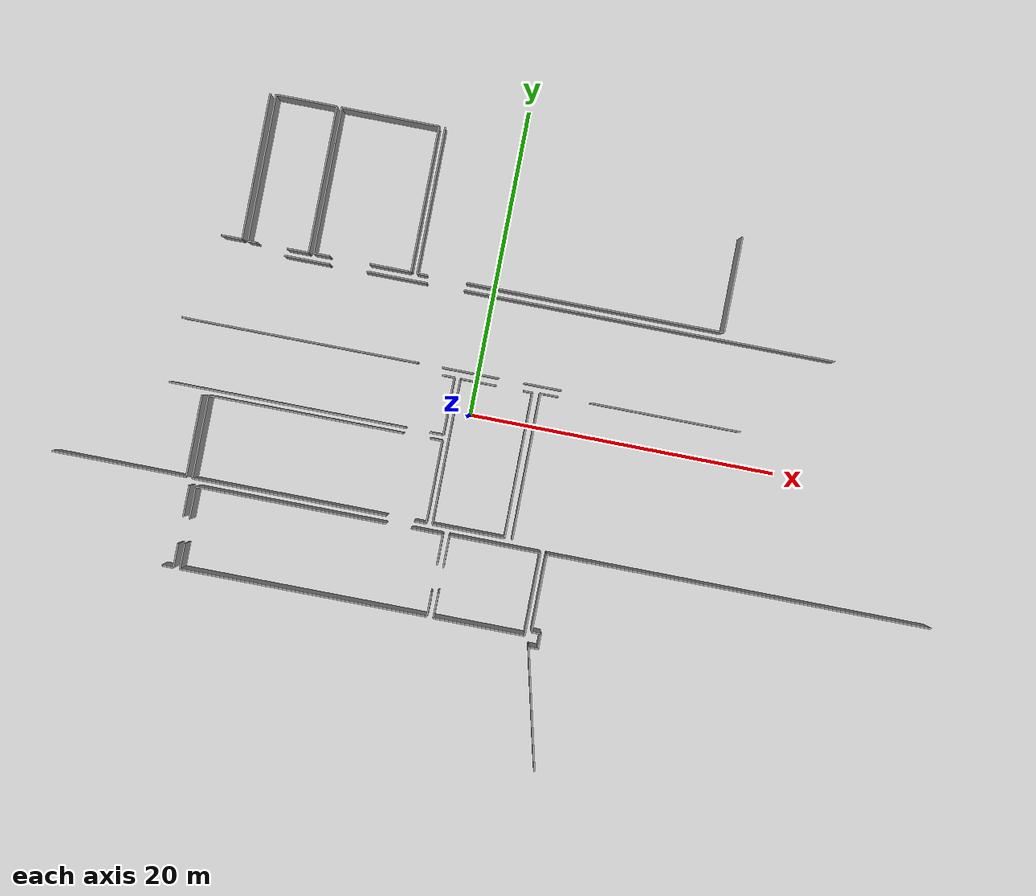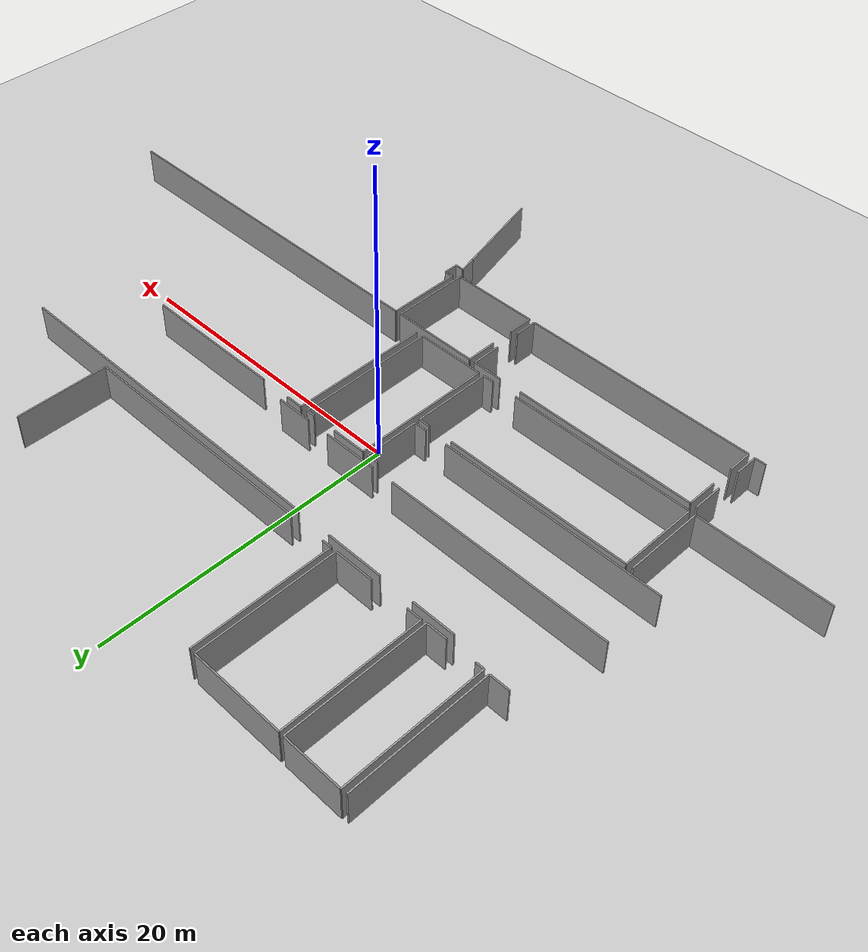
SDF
<sdf version="1.6">
 <world name="default">
  <model name="ground_plane">
   <static>1</static>
   <link name="link">
    <collision name="collision">
     <geometry><plane><normal>0 0 1</normal><size>100 100</size></plane></geometry>
     <surface><friction><ode><mu>100</mu><mu2>50</mu2></ode></friction></surface>
    </collision>
    <visual name="visual">
     <cast_shadows>0</cast_shadows>
     <geometry><plane><normal>0 0 1</normal><size>100 100</size></plane></geometry>
     <material>
      <script><uri>file://media/materials/scripts/gazebo.material</uri><name>Gazebo/Grey</name></script>
     </material>
    </visual>
   </link>
  </model>
  <model name="50052748">
   <static>1</static>
   <link name="Wall_15">
    <collision name="Wall_15_Collision">
     <geometry><box><size>2.93442130214 0.1 2.5</size></box></geometry>
     <pose>1.46721065107 0 1.25 0 0 0</pose>
    </collision>
    <visual name="Wall_15_Visual">
     <pose>1.46721065107 0 1.25 0 0 0</pose>
     <geometry><box><size>2.93442130214 0.1 2.5</size></box></geometry>
     <material>
      <script><uri>file://media/materials/scripts/gazebo.material</uri><name>Gazebo/Grey</name></script>
      <ambient>1 1 1 1</ambient>
     </material>
    </visual>
    <pose>28.9768079513 -13.728546372 0 0 0 0.0</pose>
   </link>
   <link name="Wall_16">
    <collision name="Wall_16_Collision">
     <geometry><box><size>3.93695394945 0.1 2.5</size></box></geometry>
     <pose>1.96847697472 0 1.25 0 0 0</pose>
    </collision>
    <visual name="Wall_16_Visual">
     <pose>1.96847697472 0 1.25 0 0 0</pose>
     <geometry><box><size>3.93695394945 0.1 2.5</size></box></geometry>
     <material>
      <script><uri>file://media/materials/scripts/gazebo.material</uri><name>Gazebo/Grey</name></script>
      <ambient>1 1 1 1</ambient>
     </material>
    </visual>
    <pose>34.3019620724 -13.728546372 0 0 0 0.0</pose>
   </link>
   <link name="Wall_17">
    <collision name="Wall_17_Collision">
     <geometry><box><size>24.0978157344 0.1 2.5</size></box></geometry>
     <pose>12.0489078672 0 1.25 0 0 0</pose>
    </collision>
    <visual name="Wall_17_Visual">
     <pose>12.0489078672 0 1.25 0 0 0</pose>
     <geometry><box><size>24.0978157344 0.1 2.5</size></box></geometry>
     <material>
      <script><uri>file://media/materials/scripts/gazebo.material</uri><name>Gazebo/Grey</name></script>
      <ambient>1 1 1 1</ambient>
     </material>
    </visual>
    <pose>40.6578034579 -13.728546372 0 0 0 0.0</pose>
   </link>
   <link name="Wall_27">
    <collision name="Wall_27_Collision">
     <geometry><box><size>2.42193117845 0.1 2.5</size></box></geometry>
     <pose>1.21096558922 0 1.25 0 0 0</pose>
    </collision>
    <visual name="Wall_27_Visual">
     <pose>1.21096558922 0 1.25 0 0 0</pose>
     <geometry><box><size>2.42193117845 0.1 2.5</size></box></geometry>
     <material>
      <script><uri>file://media/materials/scripts/gazebo.material</uri><name>Gazebo/Grey</name></script>
      <ambient>1 1 1 1</ambient>
     </material>
    </visual>
    <pose>47.9662093866 -18.8256734597 0 0 0 3.14159265359</pose>
   </link>
   <link name="Wall_28">
    <collision name="Wall_28_Collision">
     <geometry><box><size>3.72313104706 0.1 2.5</size></box></geometry>
     <pose>1.86156552353 0 1.25 0 0 0</pose>
    </collision>
    <visual name="Wall_28_Visual">
     <pose>1.86156552353 0 1.25 0 0 0</pose>
     <geometry><box><size>3.72313104706 0.1 2.5</size></box></geometry>
     <material>
      <script><uri>file://media/materials/scripts/gazebo.material</uri><name>Gazebo/Grey</name></script>
      <ambient>1 1 1 1</ambient>
     </material>
    </visual>
    <pose>43.9417478437 -18.8256734597 0 0 0 3.14159265359</pose>
   </link>
   <link name="Wall_29">
    <collision name="Wall_29_Collision">
     <geometry><box><size>15.3426175931 0.1 2.5</size></box></geometry>
     <pose>7.67130879654 0 1.25 0 0 0</pose>
    </collision>
    <visual name="Wall_29_Visual">
     <pose>7.67130879654 0 1.25 0 0 0</pose>
     <geometry><box><size>15.3426175931 0.1 2.5</size></box></geometry>
     <material>
      <script><uri>file://media/materials/scripts/gazebo.material</uri><name>Gazebo/Grey</name></script>
      <ambient>1 1 1 1</ambient>
     </material>
    </visual>
    <pose>38.6622498583 -18.8256734597 0 0 0 3.14159265359</pose>
   </link>
   <link name="Wall_62">
    <collision name="Wall_62_Collision">
     <geometry><box><size>5.33390488051 0.1 2.5</size></box></geometry>
     <pose>2.66695244026 0 1.25 0 0 0</pose>
    </collision>
    <visual name="Wall_62_Visual">
     <pose>2.66695244026 0 1.25 0 0 0</pose>
     <geometry><box><size>5.33390488051 0.1 2.5</size></box></geometry>
     <material>
      <script><uri>file://media/materials/scripts/gazebo.material</uri><name>Gazebo/Grey</name></script>
      <ambient>1 1 1 1</ambient>
     </material>
    </visual>
    <pose>25.5054197638 -23.4316166204 0 0 0 -1.57079632679</pose>
   </link>
   <link name="Wall_63">
    <collision name="Wall_63_Collision">
     <geometry><box><size>8.73947213898 0.1 2.5</size></box></geometry>
     <pose>4.36973606949 0 1.25 0 0 0</pose>
    </collision>
    <visual name="Wall_63_Visual">
     <pose>4.36973606949 0 1.25 0 0 0</pose>
     <geometry><box><size>8.73947213898 0.1 2.5</size></box></geometry>
     <material>
      <script><uri>file://media/materials/scripts/gazebo.material</uri><name>Gazebo/Grey</name></script>
      <ambient>1 1 1 1</ambient>
     </material>
    </visual>
    <pose>25.5054197638 -28.7655215009 0 0 0 3.14159265359</pose>
   </link>
   <link name="Wall_79">
    <collision name="Wall_79_Collision">
     <geometry><box><size>9.43598185422 0.1 2.5</size></box></geometry>
     <pose>4.71799092711 0 1.25 0 0 0</pose>
    </collision>
    <visual name="Wall_79_Visual">
     <pose>4.71799092711 0 1.25 0 0 0</pose>
     <geometry><box><size>9.43598185422 0.1 2.5</size></box></geometry>
     <material>
      <script><uri>file://media/materials/scripts/gazebo.material</uri><name>Gazebo/Grey</name></script>
      <ambient>1 1 1 1</ambient>
     </material>
    </visual>
    <pose>26.1390254698 -3.77766476475 0 0 0 -1.57079632679</pose>
   </link>
   <link name="Wall_80">
    <collision name="Wall_80_Collision">
     <geometry><box><size>1.34749011735 0.1 2.5</size></box></geometry>
     <pose>0.673745058674 0 1.25 0 0 0</pose>
    </collision>
    <visual name="Wall_80_Visual">
     <pose>0.673745058674 0 1.25 0 0 0</pose>
     <geometry><box><size>1.34749011735 0.1 2.5</size></box></geometry>
     <material>
      <script><uri>file://media/materials/scripts/gazebo.material</uri><name>Gazebo/Grey</name></script>
      <ambient>1 1 1 1</ambient>
     </material>
    </visual>
    <pose>26.1390254698 -13.213646619 0 0 0 3.14159265359</pose>
   </link>
   <link name="Wall_92">
    <collision name="Wall_92_Collision">
     <geometry><box><size>0.588330038059 0.1 2.5</size></box></geometry>
     <pose>0.29416501903 0 1.25 0 0 0</pose>
    </collision>
    <visual name="Wall_92_Visual">
     <pose>0.29416501903 0 1.25 0 0 0</pose>
     <geometry><box><size>0.588330038059 0.1 2.5</size></box></geometry>
     <material>
      <script><uri>file://media/materials/scripts/gazebo.material</uri><name>Gazebo/Grey</name></script>
      <ambient>1 1 1 1</ambient>
     </material>
    </visual>
    <pose>26.5188591546 -13.2623464971 0 0 0 0.0</pose>
   </link>
   <link name="Wall_93">
    <collision name="Wall_93_Collision">
     <geometry><box><size>1.40012149605 0.1 2.5</size></box></geometry>
     <pose>0.700060748025 0 1.25 0 0 0</pose>
    </collision>
    <visual name="Wall_93_Visual">
     <pose>0.700060748025 0 1.25 0 0 0</pose>
     <geometry><box><size>1.40012149605 0.1 2.5</size></box></geometry>
     <material>
      <script><uri>file://media/materials/scripts/gazebo.material</uri><name>Gazebo/Grey</name></script>
      <ambient>1 1 1 1</ambient>
     </material>
    </visual>
    <pose>29.0705298521 -13.2623464971 0 0 0 0.0</pose>
   </link>
   <link name="Wall_94">
    <collision name="Wall_94_Collision">
     <geometry><box><size>9.50484652563 0.1 2.5</size></box></geometry>
     <pose>4.75242326282 0 1.25 0 0 0</pose>
    </collision>
    <visual name="Wall_94_Visual">
     <pose>4.75242326282 0 1.25 0 0 0</pose>
     <geometry><box><size>9.50484652563 0.1 2.5</size></box></geometry>
     <material>
      <script><uri>file://media/materials/scripts/gazebo.material</uri><name>Gazebo/Grey</name></script>
      <ambient>1 1 1 1</ambient>
     </material>
    </visual>
    <pose>30.4706513482 -13.2623464971 0 0 0 1.57079632679</pose>
   </link>
   <link name="Wall_95">
    <collision name="Wall_95_Collision">
     <geometry><box><size>3.94608517659 0.1 2.5</size></box></geometry>
     <pose>1.9730425883 0 1.25 0 0 0</pose>
    </collision>
    <visual name="Wall_95_Visual">
     <pose>1.9730425883 0 1.25 0 0 0</pose>
     <geometry><box><size>3.94608517659 0.1 2.5</size></box></geometry>
     <material>
      <script><uri>file://media/materials/scripts/gazebo.material</uri><name>Gazebo/Grey</name></script>
      <ambient>1 1 1 1</ambient>
     </material>
    </visual>
    <pose>30.4706513482 -3.75749997146 0 0 0 3.14159265359</pose>
   </link>
   <link name="Wall_96">
    <collision name="Wall_96_Collision">
     <geometry><box><size>9.50484823897 0.1 2.5</size></box></geometry>
     <pose>4.75242411949 0 1.25 0 0 0</pose>
    </collision>
    <visual name="Wall_96_Visual">
     <pose>4.75242411949 0 1.25 0 0 0</pose>
     <geometry><box><size>9.50484823897 0.1 2.5</size></box></geometry>
     <material>
      <script><uri>file://media/materials/scripts/gazebo.material</uri><name>Gazebo/Grey</name></script>
      <ambient>1 1 1 1</ambient>
     </material>
    </visual>
    <pose>26.5245661716 -3.75749997146 0 0 0 -1.57139675903</pose>
   </link>
   <link name="Wall_99">
    <collision name="Wall_99_Collision">
     <geometry><box><size>0.786300115535 0.1 2.5</size></box></geometry>
     <pose>0.393150057768 0 1.25 0 0 0</pose>
    </collision>
    <visual name="Wall_99_Visual">
     <pose>0.393150057768 0 1.25 0 0 0</pose>
     <geometry><box><size>0.786300115535 0.1 2.5</size></box></geometry>
     <material>
      <script><uri>file://media/materials/scripts/gazebo.material</uri><name>Gazebo/Grey</name></script>
      <ambient>1 1 1 1</ambient>
     </material>
    </visual>
    <pose>40.3171579563 -19.3027800782 0 0 0 0.0</pose>
   </link>
   <link name="Wall_100">
    <collision name="Wall_100_Collision">
     <geometry><box><size>3.73873022677 0.1 2.5</size></box></geometry>
     <pose>1.86936511339 0 1.25 0 0 0</pose>
    </collision>
    <visual name="Wall_100_Visual">
     <pose>1.86936511339 0 1.25 0 0 0</pose>
     <geometry><box><size>3.73873022677 0.1 2.5</size></box></geometry>
     <material>
      <script><uri>file://media/materials/scripts/gazebo.material</uri><name>Gazebo/Grey</name></script>
      <ambient>1 1 1 1</ambient>
     </material>
    </visual>
    <pose>41.1034580718 -19.3027800782 0 0 0 -1.57079632679</pose>
   </link>
   <link name="Wall_101">
    <collision name="Wall_101_Collision">
     <geometry><box><size>0.890548292143 0.1 2.5</size></box></geometry>
     <pose>0.445274146072 0 1.25 0 0 0</pose>
    </collision>
    <visual name="Wall_101_Visual">
     <pose>0.445274146072 0 1.25 0 0 0</pose>
     <geometry><box><size>0.890548292143 0.1 2.5</size></box></geometry>
     <material>
      <script><uri>file://media/materials/scripts/gazebo.material</uri><name>Gazebo/Grey</name></script>
      <ambient>1 1 1 1</ambient>
     </material>
    </visual>
    <pose>41.1034580718 -23.041510305 0 0 0 3.14159265359</pose>
   </link>
   <link name="Wall_102">
    <collision name="Wall_102_Collision">
     <geometry><box><size>15.3639287147 0.1 2.5</size></box></geometry>
     <pose>7.68196435737 0 1.25 0 0 0</pose>
    </collision>
    <visual name="Wall_102_Visual">
     <pose>7.68196435737 0 1.25 0 0 0</pose>
     <geometry><box><size>15.3639287147 0.1 2.5</size></box></geometry>
     <material>
      <script><uri>file://media/materials/scripts/gazebo.material</uri><name>Gazebo/Grey</name></script>
      <ambient>1 1 1 1</ambient>
     </material>
    </visual>
    <pose>38.6630107939 -23.041510305 0 0 0 3.14079196038</pose>
   </link>
   <link name="Wall_103">
    <collision name="Wall_103_Collision">
     <geometry><box><size>9.45551253451 0.1 2.5</size></box></geometry>
     <pose>4.72775626726 0 1.25 0 0 0</pose>
    </collision>
    <visual name="Wall_103_Visual">
     <pose>4.72775626726 0 1.25 0 0 0</pose>
     <geometry><box><size>9.45551253451 0.1 2.5</size></box></geometry>
     <material>
      <script><uri>file://media/materials/scripts/gazebo.material</uri><name>Gazebo/Grey</name></script>
      <ambient>1 1 1 1</ambient>
     </material>
    </visual>
    <pose>30.7927807504 -13.2242997173 0 0 0 1.57079632679</pose>
   </link>
   <link name="Wall_104">
    <collision name="Wall_104_Collision">
     <geometry><box><size>6.32565760688 0.1 2.5</size></box></geometry>
     <pose>3.16282880344 0 1.25 0 0 0</pose>
    </collision>
    <visual name="Wall_104_Visual">
     <pose>3.16282880344 0 1.25 0 0 0</pose>
     <geometry><box><size>6.32565760688 0.1 2.5</size></box></geometry>
     <material>
      <script><uri>file://media/materials/scripts/gazebo.material</uri><name>Gazebo/Grey</name></script>
      <ambient>1 1 1 1</ambient>
     </material>
    </visual>
    <pose>30.7927807504 -3.7687871828 0 0 0 0.0</pose>
   </link>
   <link name="Wall_105">
    <collision name="Wall_105_Collision">
     <geometry><box><size>9.45322972772 0.1 2.5</size></box></geometry>
     <pose>4.72661486386 0 1.25 0 0 0</pose>
    </collision>
    <visual name="Wall_105_Visual">
     <pose>4.72661486386 0 1.25 0 0 0</pose>
     <geometry><box><size>9.45322972772 0.1 2.5</size></box></geometry>
     <material>
      <script><uri>file://media/materials/scripts/gazebo.material</uri><name>Gazebo/Grey</name></script>
      <ambient>1 1 1 1</ambient>
     </material>
    </visual>
    <pose>37.1184383572 -3.7687871828 0 0 0 -1.57079632679</pose>
   </link>
   <link name="Wall_106">
    <collision name="Wall_106_Collision">
     <geometry><box><size>2.70297005845 0.1 2.5</size></box></geometry>
     <pose>1.35148502923 0 1.25 0 0 0</pose>
    </collision>
    <visual name="Wall_106_Visual">
     <pose>1.35148502923 0 1.25 0 0 0</pose>
     <geometry><box><size>2.70297005845 0.1 2.5</size></box></geometry>
     <material>
      <script><uri>file://media/materials/scripts/gazebo.material</uri><name>Gazebo/Grey</name></script>
      <ambient>1 1 1 1</ambient>
     </material>
    </visual>
    <pose>37.1184383572 -13.2220169105 0 0 0 3.14159265359</pose>
   </link>
   <link name="Wall_107">
    <collision name="Wall_107_Collision">
     <geometry><box><size>1.03994781961 0.1 2.5</size></box></geometry>
     <pose>0.519973909806 0 1.25 0 0 0</pose>
    </collision>
    <visual name="Wall_107_Visual">
     <pose>0.519973909806 0 1.25 0 0 0</pose>
     <geometry><box><size>1.03994781961 0.1 2.5</size></box></geometry>
     <material>
      <script><uri>file://media/materials/scripts/gazebo.material</uri><name>Gazebo/Grey</name></script>
      <ambient>1 1 1 1</ambient>
     </material>
    </visual>
    <pose>31.8327260645 -13.2220169105 0 0 0 -3.13939753516</pose>
   </link>
   <link name="Wall_108">
    <collision name="Wall_108_Collision">
     <geometry><box><size>0.657701999866 0.1 2.5</size></box></geometry>
     <pose>0.328850999933 0 1.25 0 0 0</pose>
    </collision>
    <visual name="Wall_108_Visual">
     <pose>0.328850999933 0 1.25 0 0 0</pose>
     <geometry><box><size>0.657701999866 0.1 2.5</size></box></geometry>
     <material>
      <script><uri>file://media/materials/scripts/gazebo.material</uri><name>Gazebo/Grey</name></script>
      <ambient>1 1 1 1</ambient>
     </material>
    </visual>
    <pose>37.5150126252 -13.2369819772 0 0 0 0.0</pose>
   </link>
   <link name="Wall_109">
    <collision name="Wall_109_Collision">
     <geometry><box><size>16.7405831049 0.1 2.5</size></box></geometry>
     <pose>8.37029155247 0 1.25 0 0 0</pose>
    </collision>
    <visual name="Wall_109_Visual">
     <pose>8.37029155247 0 1.25 0 0 0</pose>
     <geometry><box><size>16.7405831049 0.1 2.5</size></box></geometry>
     <material>
      <script><uri>file://media/materials/scripts/gazebo.material</uri><name>Gazebo/Grey</name></script>
      <ambient>1 1 1 1</ambient>
     </material>
    </visual>
    <pose>40.7202001768 -13.2369819772 0 0 0 0.0</pose>
   </link>
   <link name="Wall_110">
    <collision name="Wall_110_Collision">
     <geometry><box><size>6.21062950934 0.1 2.5</size></box></geometry>
     <pose>3.10531475467 0 1.25 0 0 0</pose>
    </collision>
    <visual name="Wall_110_Visual">
     <pose>3.10531475467 0 1.25 0 0 0</pose>
     <geometry><box><size>6.21062950934 0.1 2.5</size></box></geometry>
     <material>
      <script><uri>file://media/materials/scripts/gazebo.material</uri><name>Gazebo/Grey</name></script>
      <ambient>1 1 1 1</ambient>
     </material>
    </visual>
    <pose>57.4607832817 -13.2369819772 0 0 0 1.57079632679</pose>
   </link>
   <link name="Wall_113">
    <collision name="Wall_113_Collision">
     <geometry><box><size>9.46286826652 0.1 2.5</size></box></geometry>
     <pose>4.73143413326 0 1.25 0 0 0</pose>
    </collision>
    <visual name="Wall_113_Visual">
     <pose>4.73143413326 0 1.25 0 0 0</pose>
     <geometry><box><size>9.46286826652 0.1 2.5</size></box></geometry>
     <material>
      <script><uri>file://media/materials/scripts/gazebo.material</uri><name>Gazebo/Grey</name></script>
      <ambient>1 1 1 1</ambient>
     </material>
    </visual>
    <pose>37.5143785122 -3.77411373197 0 0 0 -1.57072931614</pose>
   </link>
   <link name="Wall_129">
    <collision name="Wall_129_Collision">
     <geometry><box><size>9.46248777747 0.1 2.5</size></box></geometry>
     <pose>4.73124388874 0 1.25 0 0 0</pose>
    </collision>
    <visual name="Wall_129_Visual">
     <pose>4.73124388874 0 1.25 0 0 0</pose>
     <geometry><box><size>9.46248777747 0.1 2.5</size></box></geometry>
     <material>
      <script><uri>file://media/materials/scripts/gazebo.material</uri><name>Gazebo/Grey</name></script>
      <ambient>1 1 1 1</ambient>
     </material>
    </visual>
    <pose>41.4921693386 -28.7760477766 0 0 0 1.57079632679</pose>
   </link>
   <link name="Wall_130">
    <collision name="Wall_130_Collision">
     <geometry><box><size>2.359407637 0.1 2.5</size></box></geometry>
     <pose>1.1797038185 0 1.25 0 0 0</pose>
    </collision>
    <visual name="Wall_130_Visual">
     <pose>1.1797038185 0 1.25 0 0 0</pose>
     <geometry><box><size>2.359407637 0.1 2.5</size></box></geometry>
     <material>
      <script><uri>file://media/materials/scripts/gazebo.material</uri><name>Gazebo/Grey</name></script>
      <ambient>1 1 1 1</ambient>
     </material>
    </visual>
    <pose>41.4921693386 -19.3135599991 0 0 0 0.0</pose>
   </link>
   <link name="Wall_131">
    <collision name="Wall_131_Collision">
     <geometry><box><size>0.592642006435 0.1 2.5</size></box></geometry>
     <pose>0.296321003217 0 1.25 0 0 0</pose>
    </collision>
    <visual name="Wall_131_Visual">
     <pose>0.296321003217 0 1.25 0 0 0</pose>
     <geometry><box><size>0.592642006435 0.1 2.5</size></box></geometry>
     <material>
      <script><uri>file://media/materials/scripts/gazebo.material</uri><name>Gazebo/Grey</name></script>
      <ambient>1 1 1 1</ambient>
     </material>
    </visual>
    <pose>45.5947536027 -19.3135599991 0 0 0 0.0</pose>
   </link>
   <link name="Wall_132">
    <collision name="Wall_132_Collision">
     <geometry><box><size>9.44714224296 0.1 2.5</size></box></geometry>
     <pose>4.72357112148 0 1.25 0 0 0</pose>
    </collision>
    <visual name="Wall_132_Visual">
     <pose>4.72357112148 0 1.25 0 0 0</pose>
     <geometry><box><size>9.44714224296 0.1 2.5</size></box></geometry>
     <material>
      <script><uri>file://media/materials/scripts/gazebo.material</uri><name>Gazebo/Grey</name></script>
      <ambient>1 1 1 1</ambient>
     </material>
    </visual>
    <pose>46.1873956091 -19.3135599991 0 0 0 -1.57079632679</pose>
   </link>
   <link name="Wall_133">
    <collision name="Wall_133_Collision">
     <geometry><box><size>4.69525134759 0.1 2.5</size></box></geometry>
     <pose>2.34762567379 0 1.25 0 0 0</pose>
    </collision>
    <visual name="Wall_133_Visual">
     <pose>2.34762567379 0 1.25 0 0 0</pose>
     <geometry><box><size>4.69525134759 0.1 2.5</size></box></geometry>
     <material>
      <script><uri>file://media/materials/scripts/gazebo.material</uri><name>Gazebo/Grey</name></script>
      <ambient>1 1 1 1</ambient>
     </material>
    </visual>
    <pose>46.1873956091 -28.7607022421 0 0 0 -3.13832433829</pose>
   </link>
   <link name="Wall_134">
    <collision name="Wall_134_Collision">
     <geometry><box><size>9.50395876744 0.1 2.5</size></box></geometry>
     <pose>4.75197938372 0 1.25 0 0 0</pose>
    </collision>
    <visual name="Wall_134_Visual">
     <pose>4.75197938372 0 1.25 0 0 0</pose>
     <geometry><box><size>9.50395876744 0.1 2.5</size></box></geometry>
     <material>
      <script><uri>file://media/materials/scripts/gazebo.material</uri><name>Gazebo/Grey</name></script>
      <ambient>1 1 1 1</ambient>
     </material>
    </visual>
    <pose>46.6887253441 -28.769579824 0 0 0 1.57079632679</pose>
   </link>
   <link name="Wall_135">
    <collision name="Wall_135_Collision">
     <geometry><box><size>1.1795769959 0.1 2.5</size></box></geometry>
     <pose>0.589788497951 0 1.25 0 0 0</pose>
    </collision>
    <visual name="Wall_135_Visual">
     <pose>0.589788497951 0 1.25 0 0 0</pose>
     <geometry><box><size>1.1795769959 0.1 2.5</size></box></geometry>
     <material>
      <script><uri>file://media/materials/scripts/gazebo.material</uri><name>Gazebo/Grey</name></script>
      <ambient>1 1 1 1</ambient>
     </material>
    </visual>
    <pose>46.6887253441 -19.2656210566 0 0 0 0.0</pose>
   </link>
   <link name="Wall_136">
    <collision name="Wall_136_Collision">
     <geometry><box><size>9.70078744152 0.1 2.5</size></box></geometry>
     <pose>4.85039372076 0 1.25 0 0 0</pose>
    </collision>
    <visual name="Wall_136_Visual">
     <pose>4.85039372076 0 1.25 0 0 0</pose>
     <geometry><box><size>9.70078744152 0.1 2.5</size></box></geometry>
     <material>
      <script><uri>file://media/materials/scripts/gazebo.material</uri><name>Gazebo/Grey</name></script>
      <ambient>1 1 1 1</ambient>
     </material>
    </visual>
    <pose>49.9948636847 -19.2656210566 0 0 0 0.0</pose>
   </link>
   <link name="Wall_146">
    <collision name="Wall_146_Collision">
     <geometry><box><size>12.6371110826 0.1 2.5</size></box></geometry>
     <pose>6.31855554132 0 1.25 0 0 0</pose>
    </collision>
    <visual name="Wall_146_Visual">
     <pose>6.31855554132 0 1.25 0 0 0</pose>
     <geometry><box><size>12.6371110826 0.1 2.5</size></box></geometry>
     <material>
      <script><uri>file://media/materials/scripts/gazebo.material</uri><name>Gazebo/Grey</name></script>
      <ambient>1 1 1 1</ambient>
     </material>
    </visual>
    <pose>25.9101106781 -28.785432649 0 0 0 0.0</pose>
   </link>
   <link name="Wall_147">
    <collision name="Wall_147_Collision">
     <geometry><box><size>0.776788420589 0.1 2.5</size></box></geometry>
     <pose>0.388394210295 0 1.25 0 0 0</pose>
    </collision>
    <visual name="Wall_147_Visual">
     <pose>0.388394210295 0 1.25 0 0 0</pose>
     <geometry><box><size>0.776788420589 0.1 2.5</size></box></geometry>
     <material>
      <script><uri>file://media/materials/scripts/gazebo.material</uri><name>Gazebo/Grey</name></script>
      <ambient>1 1 1 1</ambient>
     </material>
    </visual>
    <pose>40.330854797 -28.785432649 0 0 0 0.0</pose>
   </link>
   <link name="Wall_148">
    <collision name="Wall_148_Collision">
     <geometry><box><size>5.36941520831 0.1 2.5</size></box></geometry>
     <pose>2.68470760416 0 1.25 0 0 0</pose>
    </collision>
    <visual name="Wall_148_Visual">
     <pose>2.68470760416 0 1.25 0 0 0</pose>
     <geometry><box><size>5.36941520831 0.1 2.5</size></box></geometry>
     <material>
      <script><uri>file://media/materials/scripts/gazebo.material</uri><name>Gazebo/Grey</name></script>
      <ambient>1 1 1 1</ambient>
     </material>
    </visual>
    <pose>41.1076432176 -28.785432649 0 0 0 1.57079632679</pose>
   </link>
   <link name="Wall_149">
    <collision name="Wall_149_Collision">
     <geometry><box><size>0.798601907666 0.1 2.5</size></box></geometry>
     <pose>0.399300953833 0 1.25 0 0 0</pose>
    </collision>
    <visual name="Wall_149_Visual">
     <pose>0.399300953833 0 1.25 0 0 0</pose>
     <geometry><box><size>0.798601907666 0.1 2.5</size></box></geometry>
     <material>
      <script><uri>file://media/materials/scripts/gazebo.material</uri><name>Gazebo/Grey</name></script>
      <ambient>1 1 1 1</ambient>
     </material>
    </visual>
    <pose>41.1076432176 -23.4160174406 0 0 0 3.14159265359</pose>
   </link>
   <link name="Wall_150">
    <collision name="Wall_150_Collision">
     <geometry><box><size>12.6547394239 0.1 2.5</size></box></geometry>
     <pose>6.32736971197 0 1.25 0 0 0</pose>
    </collision>
    <visual name="Wall_150_Visual">
     <pose>6.32736971197 0 1.25 0 0 0</pose>
     <geometry><box><size>12.6547394239 0.1 2.5</size></box></geometry>
     <material>
      <script><uri>file://media/materials/scripts/gazebo.material</uri><name>Gazebo/Grey</name></script>
      <ambient>1 1 1 1</ambient>
     </material>
    </visual>
    <pose>38.576898249 -23.4160174406 0 0 0 3.14159265359</pose>
   </link>
   <link name="Wall_151">
    <collision name="Wall_151_Collision">
     <geometry><box><size>5.3694287254 0.1 2.5</size></box></geometry>
     <pose>2.6847143627 0 1.25 0 0 0</pose>
    </collision>
    <visual name="Wall_151_Visual">
     <pose>2.6847143627 0 1.25 0 0 0</pose>
     <geometry><box><size>5.3694287254 0.1 2.5</size></box></geometry>
     <material>
      <script><uri>file://media/materials/scripts/gazebo.material</uri><name>Gazebo/Grey</name></script>
      <ambient>1 1 1 1</ambient>
     </material>
    </visual>
    <pose>25.922158825 -23.4160174406 0 0 0 -1.57304017016</pose>
   </link>
   <link name="Wall_152">
    <collision name="Wall_152_Collision">
     <geometry><box><size>1.66720989013 0.1 2.5</size></box></geometry>
     <pose>0.833604945067 0 1.25 0 0 0</pose>
    </collision>
    <visual name="Wall_152_Visual">
     <pose>0.833604945067 0 1.25 0 0 0</pose>
     <geometry><box><size>1.66720989013 0.1 2.5</size></box></geometry>
     <material>
      <script><uri>file://media/materials/scripts/gazebo.material</uri><name>Gazebo/Grey</name></script>
      <ambient>1 1 1 1</ambient>
     </material>
    </visual>
    <pose>26.2246307243 -34.6185112802 0 0 0 1.57079632679</pose>
   </link>
   <link name="Wall_153">
    <collision name="Wall_153_Collision">
     <geometry><box><size>2.09308017852 0.1 2.5</size></box></geometry>
     <pose>1.04654008926 0 1.25 0 0 0</pose>
    </collision>
    <visual name="Wall_153_Visual">
     <pose>1.04654008926 0 1.25 0 0 0</pose>
     <geometry><box><size>2.09308017852 0.1 2.5</size></box></geometry>
     <material>
      <script><uri>file://media/materials/scripts/gazebo.material</uri><name>Gazebo/Grey</name></script>
      <ambient>1 1 1 1</ambient>
     </material>
    </visual>
    <pose>26.2246307243 -31.3685553511 0 0 0 1.57079632679</pose>
   </link>
   <link name="Wall_154">
    <collision name="Wall_154_Collision">
     <geometry><box><size>12.3979236604 0.1 2.5</size></box></geometry>
     <pose>6.1989618302 0 1.25 0 0 0</pose>
    </collision>
    <visual name="Wall_154_Visual">
     <pose>6.1989618302 0 1.25 0 0 0</pose>
     <geometry><box><size>12.3979236604 0.1 2.5</size></box></geometry>
     <material>
      <script><uri>file://media/materials/scripts/gazebo.material</uri><name>Gazebo/Grey</name></script>
      <ambient>1 1 1 1</ambient>
     </material>
    </visual>
    <pose>26.2246307243 -29.2754751726 0 0 0 0.0</pose>
   </link>
   <link name="Wall_155">
    <collision name="Wall_155_Collision">
     <geometry><box><size>2.05934536711 0.1 2.5</size></box></geometry>
     <pose>1.02967268355 0 1.25 0 0 0</pose>
    </collision>
    <visual name="Wall_155_Visual">
     <pose>1.02967268355 0 1.25 0 0 0</pose>
     <geometry><box><size>2.05934536711 0.1 2.5</size></box></geometry>
     <material>
      <script><uri>file://media/materials/scripts/gazebo.material</uri><name>Gazebo/Grey</name></script>
      <ambient>1 1 1 1</ambient>
     </material>
    </visual>
    <pose>40.2146852961 -29.2754751726 0 0 0 0.0</pose>
   </link>
   <link name="Wall_156">
    <collision name="Wall_156_Collision">
     <geometry><box><size>2.00430435902 0.1 2.5</size></box></geometry>
     <pose>1.00215217951 0 1.25 0 0 0</pose>
    </collision>
    <visual name="Wall_156_Visual">
     <pose>1.00215217951 0 1.25 0 0 0</pose>
     <geometry><box><size>2.00430435902 0.1 2.5</size></box></geometry>
     <material>
      <script><uri>file://media/materials/scripts/gazebo.material</uri><name>Gazebo/Grey</name></script>
      <ambient>1 1 1 1</ambient>
     </material>
    </visual>
    <pose>42.2740306632 -29.2754751726 0 0 0 -1.57079632679</pose>
   </link>
   <link name="Wall_157">
    <collision name="Wall_157_Collision">
     <geometry><box><size>1.56625910111 0.1 2.5</size></box></geometry>
     <pose>0.783129550553 0 1.25 0 0 0</pose>
    </collision>
    <visual name="Wall_157_Visual">
     <pose>0.783129550553 0 1.25 0 0 0</pose>
     <geometry><box><size>1.56625910111 0.1 2.5</size></box></geometry>
     <material>
      <script><uri>file://media/materials/scripts/gazebo.material</uri><name>Gazebo/Grey</name></script>
      <ambient>1 1 1 1</ambient>
     </material>
    </visual>
    <pose>42.2740306632 -33.0383016932 0 0 0 -1.57079632679</pose>
   </link>
   <link name="Wall_158">
    <collision name="Wall_158_Collision">
     <geometry><box><size>16.0494060019 0.1 2.5</size></box></geometry>
     <pose>8.02470300095 0 1.25 0 0 0</pose>
    </collision>
    <visual name="Wall_158_Visual">
     <pose>8.02470300095 0 1.25 0 0 0</pose>
     <geometry><box><size>16.0494060019 0.1 2.5</size></box></geometry>
     <material>
      <script><uri>file://media/materials/scripts/gazebo.material</uri><name>Gazebo/Grey</name></script>
      <ambient>1 1 1 1</ambient>
     </material>
    </visual>
    <pose>42.2740306632 -34.6045607943 0 0 0 -3.14072343216</pose>
   </link>
   <link name="Wall_162">
    <collision name="Wall_162_Collision">
     <geometry><box><size>2.03271262126 0.1 2.5</size></box></geometry>
     <pose>1.01635631063 0 1.25 0 0 0</pose>
    </collision>
    <visual name="Wall_162_Visual">
     <pose>1.01635631063 0 1.25 0 0 0</pose>
     <geometry><box><size>2.03271262126 0.1 2.5</size></box></geometry>
     <material>
      <script><uri>file://media/materials/scripts/gazebo.material</uri><name>Gazebo/Grey</name></script>
      <ambient>1 1 1 1</ambient>
     </material>
    </visual>
    <pose>25.8063697919 -29.2579736539 0 0 0 -1.57079632679</pose>
   </link>
   <link name="Wall_163">
    <collision name="Wall_163_Collision">
     <geometry><box><size>1.57361481187 0.1 2.5</size></box></geometry>
     <pose>0.786807405933 0 1.25 0 0 0</pose>
    </collision>
    <visual name="Wall_163_Visual">
     <pose>0.786807405933 0 1.25 0 0 0</pose>
     <geometry><box><size>1.57361481187 0.1 2.5</size></box></geometry>
     <material>
      <script><uri>file://media/materials/scripts/gazebo.material</uri><name>Gazebo/Grey</name></script>
      <ambient>1 1 1 1</ambient>
     </material>
    </visual>
    <pose>25.8063697919 -33.0309459825 0 0 0 -1.57079632679</pose>
   </link>
   <link name="Wall_164">
    <collision name="Wall_164_Collision">
     <geometry><box><size>0.75370670752 0.1 2.5</size></box></geometry>
     <pose>0.37685335376 0 1.25 0 0 0</pose>
    </collision>
    <visual name="Wall_164_Visual">
     <pose>0.37685335376 0 1.25 0 0 0</pose>
     <geometry><box><size>0.75370670752 0.1 2.5</size></box></geometry>
     <material>
      <script><uri>file://media/materials/scripts/gazebo.material</uri><name>Gazebo/Grey</name></script>
      <ambient>1 1 1 1</ambient>
     </material>
    </visual>
    <pose>25.8063697919 -34.6045607943 0 0 0 3.14159265359</pose>
   </link>
   <link name="Wall_166">
    <collision name="Wall_166_Collision">
     <geometry><box><size>5.93719998529 0.1 2.5</size></box></geometry>
     <pose>2.96859999264 0 1.25 0 0 0</pose>
    </collision>
    <visual name="Wall_166_Visual">
     <pose>2.96859999264 0 1.25 0 0 0</pose>
     <geometry><box><size>5.93719998529 0.1 2.5</size></box></geometry>
     <material>
      <script><uri>file://media/materials/scripts/gazebo.material</uri><name>Gazebo/Grey</name></script>
      <ambient>1 1 1 1</ambient>
     </material>
    </visual>
    <pose>42.6887405628 -34.6192722158 0 0 0 0.0</pose>
   </link>
   <link name="Wall_167">
    <collision name="Wall_167_Collision">
     <geometry><box><size>5.3534355608 0.1 2.5</size></box></geometry>
     <pose>2.6767177804 0 1.25 0 0 0</pose>
    </collision>
    <visual name="Wall_167_Visual">
     <pose>2.6767177804 0 1.25 0 0 0</pose>
     <geometry><box><size>5.3534355608 0.1 2.5</size></box></geometry>
     <material>
      <script><uri>file://media/materials/scripts/gazebo.material</uri><name>Gazebo/Grey</name></script>
      <ambient>1 1 1 1</ambient>
     </material>
    </visual>
    <pose>48.6259405481 -34.6192722158 0 0 0 1.57079632679</pose>
   </link>
   <link name="Wall_168">
    <collision name="Wall_168_Collision">
     <geometry><box><size>5.92515183836 0.1 2.5</size></box></geometry>
     <pose>2.96257591918 0 1.25 0 0 0</pose>
    </collision>
    <visual name="Wall_168_Visual">
     <pose>2.96257591918 0 1.25 0 0 0</pose>
     <geometry><box><size>5.92515183836 0.1 2.5</size></box></geometry>
     <material>
      <script><uri>file://media/materials/scripts/gazebo.material</uri><name>Gazebo/Grey</name></script>
      <ambient>1 1 1 1</ambient>
     </material>
    </visual>
    <pose>48.6259405481 -29.265836655 0 0 0 3.14159265359</pose>
   </link>
   <link name="Wall_169">
    <collision name="Wall_169_Collision">
     <geometry><box><size>2.10170411527 0.1 2.5</size></box></geometry>
     <pose>1.05085205763 0 1.25 0 0 0</pose>
    </collision>
    <visual name="Wall_169_Visual">
     <pose>1.05085205763 0 1.25 0 0 0</pose>
     <geometry><box><size>2.10170411527 0.1 2.5</size></box></geometry>
     <material>
      <script><uri>file://media/materials/scripts/gazebo.material</uri><name>Gazebo/Grey</name></script>
      <ambient>1 1 1 1</ambient>
     </material>
    </visual>
    <pose>42.7007887097 -29.265836655 0 0 0 -1.57079632679</pose>
   </link>
   <link name="Wall_170">
    <collision name="Wall_170_Collision">
     <geometry><box><size>1.68361311502 0.1 2.5</size></box></geometry>
     <pose>0.84180655751 0 1.25 0 0 0</pose>
    </collision>
    <visual name="Wall_170_Visual">
     <pose>0.84180655751 0 1.25 0 0 0</pose>
     <geometry><box><size>1.68361311502 0.1 2.5</size></box></geometry>
     <material>
      <script><uri>file://media/materials/scripts/gazebo.material</uri><name>Gazebo/Grey</name></script>
      <ambient>1 1 1 1</ambient>
     </material>
    </visual>
    <pose>42.7007887097 -32.9357022104 0 0 0 -1.57795251349</pose>
   </link>
   <link name="Wall_171">
    <collision name="Wall_171_Collision">
     <geometry><box><size>1.22434723887 0.1 2.5</size></box></geometry>
     <pose>0.612173619436 0 1.25 0 0 0</pose>
    </collision>
    <visual name="Wall_171_Visual">
     <pose>0.612173619436 0 1.25 0 0 0</pose>
     <geometry><box><size>1.22434723887 0.1 2.5</size></box></geometry>
     <material>
      <script><uri>file://media/materials/scripts/gazebo.material</uri><name>Gazebo/Grey</name></script>
      <ambient>1 1 1 1</ambient>
     </material>
    </visual>
    <pose>49.2961979853 -36.4708821653 0 0 0 1.80070075493</pose>
   </link>
   <link name="Wall_172">
    <collision name="Wall_172_Collision">
     <geometry><box><size>0.608880569086 0.1 2.5</size></box></geometry>
     <pose>0.304440284543 0 1.25 0 0 0</pose>
    </collision>
    <visual name="Wall_172_Visual">
     <pose>0.304440284543 0 1.25 0 0 0</pose>
     <geometry><box><size>0.608880569086 0.1 2.5</size></box></geometry>
     <material>
      <script><uri>file://media/materials/scripts/gazebo.material</uri><name>Gazebo/Grey</name></script>
      <ambient>1 1 1 1</ambient>
     </material>
    </visual>
    <pose>49.0171882669 -35.2787497321 0 0 0 -0.0208303200362</pose>
   </link>
   <link name="Wall_173">
    <collision name="Wall_173_Collision">
     <geometry><box><size>0.979831402037 0.1 2.5</size></box></geometry>
     <pose>0.489915701018 0 1.25 0 0 0</pose>
    </collision>
    <visual name="Wall_173_Visual">
     <pose>0.489915701018 0 1.25 0 0 0</pose>
     <geometry><box><size>0.979831402037 0.1 2.5</size></box></geometry>
     <material>
      <script><uri>file://media/materials/scripts/gazebo.material</uri><name>Gazebo/Grey</name></script>
      <ambient>1 1 1 1</ambient>
     </material>
    </visual>
    <pose>49.6259367434 -35.291431992 0 0 0 1.57079632679</pose>
   </link>
   <link name="Wall_174">
    <collision name="Wall_174_Collision">
     <geometry><box><size>0.597207620009 0.1 2.5</size></box></geometry>
     <pose>0.298603810005 0 1.25 0 0 0</pose>
    </collision>
    <visual name="Wall_174_Visual">
     <pose>0.298603810005 0 1.25 0 0 0</pose>
     <geometry><box><size>0.597207620009 0.1 2.5</size></box></geometry>
     <material>
      <script><uri>file://media/materials/scripts/gazebo.material</uri><name>Gazebo/Grey</name></script>
      <ambient>1 1 1 1</ambient>
     </material>
    </visual>
    <pose>49.6259367434 -34.31160059 0 0 0 3.14159265359</pose>
   </link>
   <link name="Wall_175">
    <collision name="Wall_175_Collision">
     <geometry><box><size>5.04018374058 0.1 2.5</size></box></geometry>
     <pose>2.52009187029 0 1.25 0 0 0</pose>
    </collision>
    <visual name="Wall_175_Visual">
     <pose>2.52009187029 0 1.25 0 0 0</pose>
     <geometry><box><size>5.04018374058 0.1 2.5</size></box></geometry>
     <material>
      <script><uri>file://media/materials/scripts/gazebo.material</uri><name>Gazebo/Grey</name></script>
      <ambient>1 1 1 1</ambient>
     </material>
    </visual>
    <pose>49.0287291234 -34.31160059 0 0 0 1.57079632679</pose>
   </link>
   <link name="Wall_176">
    <collision name="Wall_176_Collision">
     <geometry><box><size>24.9835447677 0.1 2.5</size></box></geometry>
     <pose>12.4917723839 0 1.25 0 0 0</pose>
    </collision>
    <visual name="Wall_176_Visual">
     <pose>12.4917723839 0 1.25 0 0 0</pose>
     <geometry><box><size>24.9835447677 0.1 2.5</size></box></geometry>
     <material>
      <script><uri>file://media/materials/scripts/gazebo.material</uri><name>Gazebo/Grey</name></script>
      <ambient>1 1 1 1</ambient>
     </material>
    </visual>
    <pose>49.0287291234 -29.2714168494 0 0 0 0.0</pose>
   </link>
   <link name="Wall_203">
    <collision name="Wall_203_Collision">
     <geometry><box><size>6.7209995154 0.1 2.5</size></box></geometry>
     <pose>3.3604997577 0 1.25 0 0 0</pose>
    </collision>
    <visual name="Wall_203_Visual">
     <pose>3.3604997577 0 1.25 0 0 0</pose>
     <geometry><box><size>6.7209995154 0.1 2.5</size></box></geometry>
     <material>
      <script><uri>file://media/materials/scripts/gazebo.material</uri><name>Gazebo/Grey</name></script>
      <ambient>1 1 1 1</ambient>
     </material>
    </visual>
    <pose>50.8814804763 -43.0022460282 0 0 0 1.8089101092</pose>
   </link>
   <pose>-42.55 21.5022460282 0 0 0 0</pose>
  </model>
 </world>
</sdf>
